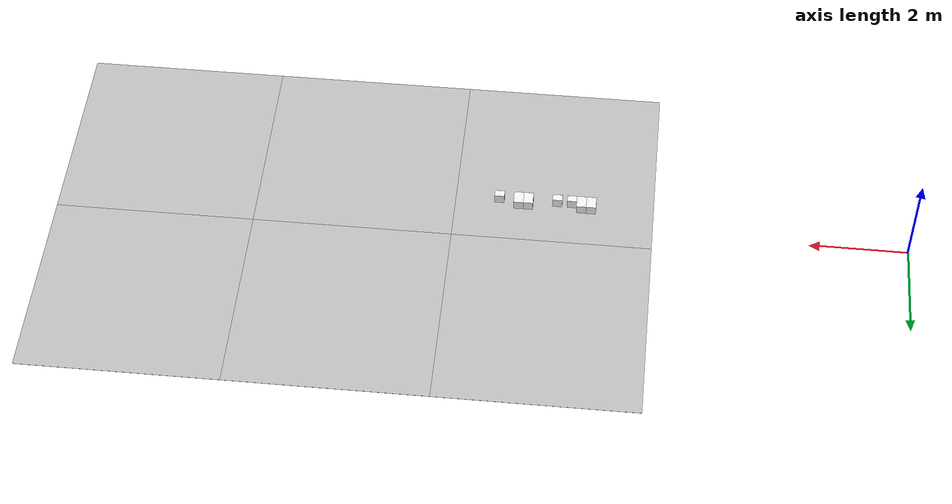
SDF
<sdf version="1.6">
 <world name="default">
  <model name="Tile/2-0">
   <static>1</static>
   <link name="link">
    <collision name="collision">
     <geometry><plane><normal>0 0 1</normal><size>4.096 4.096</size></plane></geometry>
     <surface><friction><ode><mu>100</mu><mu2>50</mu2></ode></friction></surface>
    </collision>
    <visual name="visual">
     <cast_shadows>0</cast_shadows>
     <geometry><plane><normal>0 0 1</normal><size>4.096 4.096</size></plane></geometry>
     <material>
      <script>
       <uri>file://materials/scripts</uri>
       <uri>file://materials/textures</uri>
       <name>Tile/7a46f7ce01f39e2a688bca6e1dc5f3b5c6467f752c1f280e4527b251f02df05b</name>
      </script>
     </material>
    </visual>
   </link>
   <pose>7.24 -1.6520000000000001 0 0 -0 0</pose>
  </model>
  <model name="Tile/2-1">
   <static>1</static>
   <link name="link">
    <collision name="collision">
     <geometry><plane><normal>0 0 1</normal><size>4.096 4.096</size></plane></geometry>
     <surface><friction><ode><mu>100</mu><mu2>50</mu2></ode></friction></surface>
    </collision>
    <visual name="visual">
     <cast_shadows>0</cast_shadows>
     <geometry><plane><normal>0 0 1</normal><size>4.096 4.096</size></plane></geometry>
     <material>
      <script>
       <uri>file://materials/scripts</uri>
       <uri>file://materials/textures</uri>
       <name>Tile/13957a6de1f2afce18d7f1f64dacc2f21295e26ccf498256b0e1a51002cd5706</name>
      </script>
     </material>
    </visual>
   </link>
   <pose>7.24 2.444 0 0 -0 0</pose>
  </model>
  <model name="Tile/3-0">
   <static>1</static>
   <link name="link">
    <collision name="collision">
     <geometry><plane><normal>0 0 1</normal><size>4.096 4.096</size></plane></geometry>
     <surface><friction><ode><mu>100</mu><mu2>50</mu2></ode></friction></surface>
    </collision>
    <visual name="visual">
     <cast_shadows>0</cast_shadows>
     <geometry><plane><normal>0 0 1</normal><size>4.096 4.096</size></plane></geometry>
     <material>
      <script>
       <uri>file://materials/scripts</uri>
       <uri>file://materials/textures</uri>
       <name>Tile/9ea4c64e76d6396e83842c66d9e0cf046f2b53fc1970a18100aba851c5b525dc</name>
      </script>
     </material>
    </visual>
   </link>
   <pose>11.336 -1.6520000000000001 0 0 -0 0</pose>
  </model>
  <model name="Tile/3-1">
   <static>1</static>
   <link name="link">
    <collision name="collision">
     <geometry><plane><normal>0 0 1</normal><size>4.096 4.096</size></plane></geometry>
     <surface><friction><ode><mu>100</mu><mu2>50</mu2></ode></friction></surface>
    </collision>
    <visual name="visual">
     <cast_shadows>0</cast_shadows>
     <geometry><plane><normal>0 0 1</normal><size>4.096 4.096</size></plane></geometry>
     <material>
      <script>
       <uri>file://materials/scripts</uri>
       <uri>file://materials/textures</uri>
       <name>Tile/9a23bc0f4e214852a2847a84344e8046d230fcc65b31d78c9942eccd3ef414bb</name>
      </script>
     </material>
    </visual>
   </link>
   <pose>11.336 2.444 0 0 -0 0</pose>
  </model>
  <model name="Tile/4-0">
   <static>1</static>
   <link name="link">
    <collision name="collision">
     <geometry><plane><normal>0 0 1</normal><size>4.096 4.096</size></plane></geometry>
     <surface><friction><ode><mu>100</mu><mu2>50</mu2></ode></friction></surface>
    </collision>
    <visual name="visual">
     <cast_shadows>0</cast_shadows>
     <geometry><plane><normal>0 0 1</normal><size>4.096 4.096</size></plane></geometry>
     <material>
      <script>
       <uri>file://materials/scripts</uri>
       <uri>file://materials/textures</uri>
       <name>Tile/5eab350b8220ac9944dbdfa4ac3288c7c17e24c3bf5df0dfcf6173d64dae00a1</name>
      </script>
     </material>
    </visual>
   </link>
   <pose>15.431999999999999 -1.6520000000000001 0 0 -0 0</pose>
  </model>
  <model name="Tile/4-1">
   <static>1</static>
   <link name="link">
    <collision name="collision">
     <geometry><plane><normal>0 0 1</normal><size>4.096 4.096</size></plane></geometry>
     <surface><friction><ode><mu>100</mu><mu2>50</mu2></ode></friction></surface>
    </collision>
    <visual name="visual">
     <cast_shadows>0</cast_shadows>
     <geometry><plane><normal>0 0 1</normal><size>4.096 4.096</size></plane></geometry>
     <material>
      <script>
       <uri>file://materials/scripts</uri>
       <uri>file://materials/textures</uri>
       <name>Tile/5eab350b8220ac9944dbdfa4ac3288c7c17e24c3bf5df0dfcf6173d64dae00a1</name>
      </script>
     </material>
    </visual>
   </link>
   <pose>15.431999999999999 2.444 0 0 -0 0</pose>
  </model>
  <model name="Obstacle/-54/0">
   <pose>6.48 -0.5599999999999999 0.1 0 0 -0.0</pose>
   <link name="link">
    <inertial>
     <mass>10</mass>
     <inertia>
      <ixx>0.166667</ixx>
      <ixy>0</ixy>
      <ixz>0</ixz>
      <iyy>0.166667</iyy>
      <iyz>0</iyz>
      <izz>0.166667</izz>
     </inertia>
    </inertial>
    <collision name="collision"><geometry><box><size>0.2 0.28 0.2</size></box></geometry></collision>
    <visual name="visual">
     <geometry><box><size>0.2 0.28 0.2</size></box></geometry>
     <material>
      <script><name>Gazebo/White</name><uri>file://media/materials/scripts/gazebo.material</uri></script>
     </material>
    </visual>
   </link>
  </model>
  <model name="Obstacle/-58/0">
   <pose>6.680000000000001 -0.5599999999999999 0.1 0 0 -0.0</pose>
   <link name="link">
    <inertial>
     <mass>10</mass>
     <inertia>
      <ixx>0.166667</ixx>
      <ixy>0</ixy>
      <ixz>0</ixz>
      <iyy>0.166667</iyy>
      <iyz>0</iyz>
      <izz>0.166667</izz>
     </inertia>
    </inertial>
    <collision name="collision"><geometry><box><size>0.2 0.28 0.2</size></box></geometry></collision>
    <visual name="visual">
     <geometry><box><size>0.2 0.28 0.2</size></box></geometry>
     <material>
      <script><name>Gazebo/White</name><uri>file://media/materials/scripts/gazebo.material</uri></script>
     </material>
    </visual>
   </link>
  </model>
  <model name="Obstacle/-62/0">
   <pose>6.880000000000001 -0.625 0.1 0 0 -0.0</pose>
   <link name="link">
    <inertial>
     <mass>10</mass>
     <inertia>
      <ixx>0.166667</ixx>
      <ixy>0</ixy>
      <ixz>0</ixz>
      <iyy>0.166667</iyy>
      <iyz>0</iyz>
      <izz>0.166667</izz>
     </inertia>
    </inertial>
    <collision name="collision"><geometry><box><size>0.2 0.15 0.2</size></box></geometry></collision>
    <visual name="visual">
     <geometry><box><size>0.2 0.15 0.2</size></box></geometry>
     <material>
      <script><name>Gazebo/White</name><uri>file://media/materials/scripts/gazebo.material</uri></script>
     </material>
    </visual>
   </link>
  </model>
  <model name="Obstacle/-69/0">
   <pose>7.180000000000001 -0.625 0.1 0 0 -0.0</pose>
   <link name="link">
    <inertial>
     <mass>10</mass>
     <inertia>
      <ixx>0.166667</ixx>
      <ixy>0</ixy>
      <ixz>0</ixz>
      <iyy>0.166667</iyy>
      <iyz>0</iyz>
      <izz>0.166667</izz>
     </inertia>
    </inertial>
    <collision name="collision"><geometry><box><size>0.2 0.15 0.2</size></box></geometry></collision>
    <visual name="visual">
     <geometry><box><size>0.2 0.15 0.2</size></box></geometry>
     <material>
      <script><name>Gazebo/White</name><uri>file://media/materials/scripts/gazebo.material</uri></script>
     </material>
    </visual>
   </link>
  </model>
  <model name="Obstacle/-76/0">
   <pose>7.780000000000001 -0.5599999999999999 0.1 0 0 -0.0</pose>
   <link name="link">
    <inertial>
     <mass>10</mass>
     <inertia>
      <ixx>0.166667</ixx>
      <ixy>0</ixy>
      <ixz>0</ixz>
      <iyy>0.166667</iyy>
      <iyz>0</iyz>
      <izz>0.166667</izz>
     </inertia>
    </inertial>
    <collision name="collision"><geometry><box><size>0.2 0.28 0.2</size></box></geometry></collision>
    <visual name="visual">
     <geometry><box><size>0.2 0.28 0.2</size></box></geometry>
     <material>
      <script><name>Gazebo/White</name><uri>file://media/materials/scripts/gazebo.material</uri></script>
     </material>
    </visual>
   </link>
  </model>
  <model name="Obstacle/-80/0">
   <pose>7.980000000000001 -0.5599999999999999 0.1 0 0 -0.0</pose>
   <link name="link">
    <inertial>
     <mass>10</mass>
     <inertia>
      <ixx>0.166667</ixx>
      <ixy>0</ixy>
      <ixz>0</ixz>
      <iyy>0.166667</iyy>
      <iyz>0</iyz>
      <izz>0.166667</izz>
     </inertia>
    </inertial>
    <collision name="collision"><geometry><box><size>0.2 0.28 0.2</size></box></geometry></collision>
    <visual name="visual">
     <geometry><box><size>0.2 0.28 0.2</size></box></geometry>
     <material>
      <script><name>Gazebo/White</name><uri>file://media/materials/scripts/gazebo.material</uri></script>
     </material>
    </visual>
   </link>
  </model>
  <model name="Obstacle/-87/0">
   <pose>8.38 -0.625 0.1 0 0 -0.0</pose>
   <link name="link">
    <inertial>
     <mass>10</mass>
     <inertia>
      <ixx>0.166667</ixx>
      <ixy>0</ixy>
      <ixz>0</ixz>
      <iyy>0.166667</iyy>
      <iyz>0</iyz>
      <izz>0.166667</izz>
     </inertia>
    </inertial>
    <collision name="collision"><geometry><box><size>0.2 0.15 0.2</size></box></geometry></collision>
    <visual name="visual">
     <geometry><box><size>0.2 0.15 0.2</size></box></geometry>
     <material>
      <script><name>Gazebo/White</name><uri>file://media/materials/scripts/gazebo.material</uri></script>
     </material>
    </visual>
   </link>
  </model>
 </world>
</sdf>
